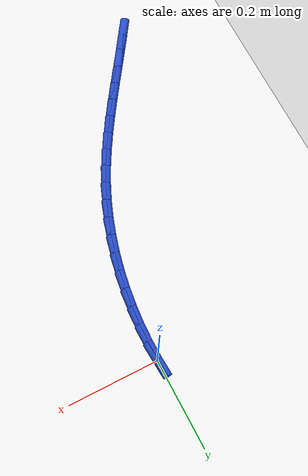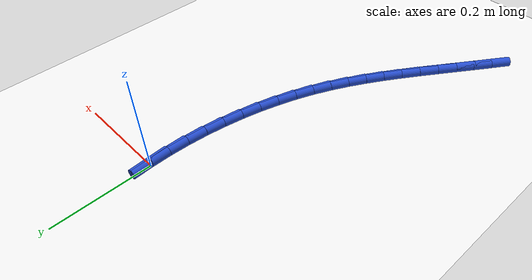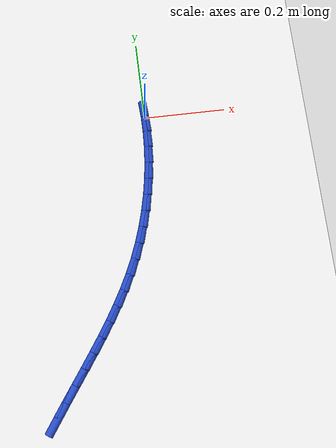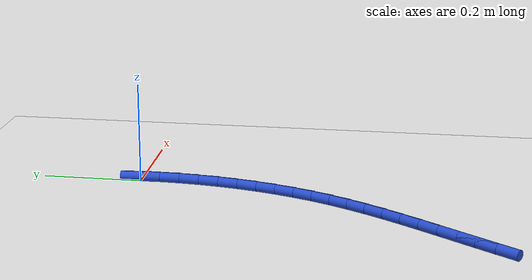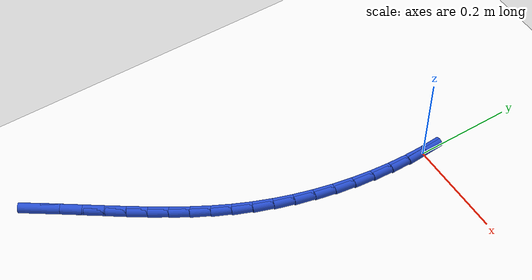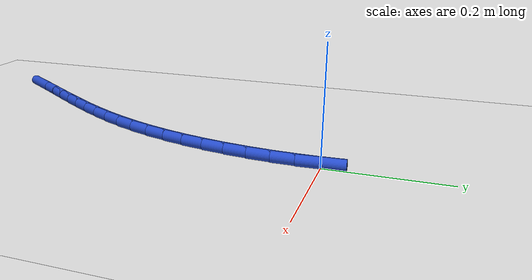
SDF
<sdf version="1.6">
 <world name="default">
  <model name="ground_plane">
   <static>1</static>
   <link name="link">
    <collision name="collision">
     <geometry><plane><normal>0 0 1</normal><size>100 100</size></plane></geometry>
     <surface><friction><ode><mu>100</mu><mu2>50</mu2></ode></friction></surface>
    </collision>
    <visual name="visual">
     <cast_shadows>0</cast_shadows>
     <geometry><plane><normal>0 0 1</normal><size>100 100</size></plane></geometry>
     <material>
      <script><uri>file://media/materials/scripts/gazebo.material</uri><name>Gazebo/WhiteGlow</name></script>
     </material>
    </visual>
   </link>
  </model>
  <model name="line">
   <link name="link_0">
    <pose>-1.3877787807814457e-17 3.469446951953614e-17 0.01 0 1.57 -1.5139552277682178</pose>
    <collision name="collision">
     <geometry><cylinder><radius>0.01</radius><length>0.08</length></cylinder></geometry>
    </collision>
    <visual name="visual">
     <material>
      <script><name>Gazebo/Blue</name><uri>file://media/materials/scripts/gazebo.material</uri></script>
     </material>
     <geometry><cylinder><radius>0.01</radius><length>0.08</length></cylinder></geometry>
    </visual>
   </link>
   <link name="link_151">
    <pose>-0.277459526870188 -0.6977397334532071 0.01 0 1.57 0.9689761049379728</pose>
    <collision name="collision">
     <geometry><cylinder><radius>0.01</radius><length>0.08</length></cylinder></geometry>
    </collision>
    <visual name="visual">
     <material>
      <script><name>Gazebo/Blue</name><uri>file://media/materials/scripts/gazebo.material</uri></script>
     </material>
     <geometry><cylinder><radius>0.01</radius><length>0.08</length></cylinder></geometry>
    </visual>
   </link>
   <link name="link_152">
    <pose>-0.2533929541803728 -0.6626987587450612 0.01 0 1.57 0.9620792668762069</pose>
    <collision name="collision">
     <geometry><cylinder><radius>0.01</radius><length>0.08</length></cylinder></geometry>
    </collision>
    <visual name="visual">
     <material>
      <script><name>Gazebo/Blue</name><uri>file://media/materials/scripts/gazebo.material</uri></script>
     </material>
     <geometry><cylinder><radius>0.01</radius><length>0.08</length></cylinder></geometry>
    </visual>
   </link>
   <link name="link_153">
    <pose>-0.22948814886522997 -0.6284025888719006 0.01 0 1.57 0.9608248843945876</pose>
    <collision name="collision">
     <geometry><cylinder><radius>0.01</radius><length>0.08</length></cylinder></geometry>
    </collision>
    <visual name="visual">
     <material>
      <script><name>Gazebo/Blue</name><uri>file://media/materials/scripts/gazebo.material</uri></script>
     </material>
     <geometry><cylinder><radius>0.01</radius><length>0.08</length></cylinder></geometry>
    </visual>
   </link>
   <link name="link_154">
    <pose>-0.20590877730459775 -0.5946636143375801 0.01 0 1.57 0.9662919894096704</pose>
    <collision name="collision">
     <geometry><cylinder><radius>0.01</radius><length>0.08</length></cylinder></geometry>
    </collision>
    <visual name="visual">
     <material>
      <script><name>Gazebo/Blue</name><uri>file://media/materials/scripts/gazebo.material</uri></script>
     </material>
     <geometry><cylinder><radius>0.01</radius><length>0.08</length></cylinder></geometry>
    </visual>
   </link>
   <link name="link_155">
    <pose>-0.18283463974943295 -0.5612601046441046 0.01 0 1.57 0.9787303565974983</pose>
    <collision name="collision">
     <geometry><cylinder><radius>0.01</radius><length>0.08</length></cylinder></geometry>
    </collision>
    <visual name="visual">
     <material>
      <script><name>Gazebo/Blue</name><uri>file://media/materials/scripts/gazebo.material</uri></script>
     </material>
     <geometry><cylinder><radius>0.01</radius><length>0.08</length></cylinder></geometry>
    </visual>
   </link>
   <link name="link_156">
    <pose>-0.16044553645069237 -0.5279703292934796 0.01 0 1.57 0.9983098466940283</pose>
    <collision name="collision">
     <geometry><cylinder><radius>0.01</radius><length>0.08</length></cylinder></geometry>
    </collision>
    <visual name="visual">
     <material>
      <script><name>Gazebo/Blue</name><uri>file://media/materials/scripts/gazebo.material</uri></script>
     </material>
     <geometry><cylinder><radius>0.01</radius><length>0.08</length></cylinder></geometry>
    </visual>
   </link>
   <link name="link_157">
    <pose>-0.13892126765933324 -0.4945725577877108 0.01 0 1.57 1.0250930841984625</pose>
    <collision name="collision">
     <geometry><cylinder><radius>0.01</radius><length>0.08</length></cylinder></geometry>
    </collision>
    <visual name="visual">
     <material>
      <script><name>Gazebo/Blue</name><uri>file://media/materials/scripts/gazebo.material</uri></script>
     </material>
     <geometry><cylinder><radius>0.01</radius><length>0.08</length></cylinder></geometry>
    </visual>
   </link>
   <link name="link_158">
    <pose>-0.11844163362631216 -0.46084505962880323 0.01 0 1.57 1.0589990485331549</pose>
    <collision name="collision">
     <geometry><cylinder><radius>0.01</radius><length>0.08</length></cylinder></geometry>
    </collision>
    <visual name="visual">
     <material>
      <script><name>Gazebo/Blue</name><uri>file://media/materials/scripts/gazebo.material</uri></script>
     </material>
     <geometry><cylinder><radius>0.01</radius><length>0.08</length></cylinder></geometry>
    </visual>
   </link>
   <link name="link_159">
    <pose>-0.09918643460258694 -0.4265661043187635 0.01 0 1.57 1.099761179821466</pose>
    <collision name="collision">
     <geometry><cylinder><radius>0.01</radius><length>0.08</length></cylinder></geometry>
    </collision>
    <visual name="visual">
     <material>
      <script><name>Gazebo/Blue</name><uri>file://media/materials/scripts/gazebo.material</uri></script>
     </material>
     <geometry><cylinder><radius>0.01</radius><length>0.08</length></cylinder></geometry>
    </visual>
   </link>
   <link name="link_160">
    <pose>-0.08133547083911427 -0.3915139613595968 0.01 0 1.57 1.146882418927479</pose>
    <collision name="collision">
     <geometry><cylinder><radius>0.01</radius><length>0.08</length></cylinder></geometry>
    </collision>
    <visual name="visual">
     <material>
      <script><name>Gazebo/Blue</name><uri>file://media/materials/scripts/gazebo.material</uri></script>
     </material>
     <geometry><cylinder><radius>0.01</radius><length>0.08</length></cylinder></geometry>
    </visual>
   </link>
   <link name="link_161">
    <pose>-0.06506844164661123 -0.35546715917256516 0.01 0 1.57 1.1977871735023737</pose>
    <collision name="collision">
     <geometry><cylinder><radius>0.01</radius><length>0.08</length></cylinder></geometry>
    </collision>
    <visual name="visual">
     <material>
      <script><name>Gazebo/Blue</name><uri>file://media/materials/scripts/gazebo.material</uri></script>
     </material>
     <geometry><cylinder><radius>0.01</radius><length>0.08</length></cylinder></geometry>
    </visual>
   </link>
   <link name="link_162">
    <pose>-0.05052578406832149 -0.318304936828173 0.01 0 1.57 1.2475996233490634</pose>
    <collision name="collision">
     <geometry><cylinder><radius>0.01</radius><length>0.08</length></cylinder></geometry>
    </collision>
    <visual name="visual">
     <material>
      <script><name>Gazebo/Blue</name><uri>file://media/materials/scripts/gazebo.material</uri></script>
     </material>
     <geometry><cylinder><radius>0.01</radius><length>0.08</length></cylinder></geometry>
    </visual>
   </link>
   <link name="link_163">
    <pose>-0.03774931554844958 -0.28015950003605056 0.01 0 1.57 1.29598808845899</pose>
    <collision name="collision">
     <geometry><cylinder><radius>0.01</radius><length>0.08</length></cylinder></geometry>
    </collision>
    <visual name="visual">
     <material>
      <script><name>Gazebo/Blue</name><uri>file://media/materials/scripts/gazebo.material</uri></script>
     </material>
     <geometry><cylinder><radius>0.01</radius><length>0.08</length></cylinder></geometry>
    </visual>
   </link>
   <link name="link_164">
    <pose>-0.02676561549717392 -0.24120214120149966 0.01 0 1.57 1.343365662973364</pose>
    <collision name="collision">
     <geometry><cylinder><radius>0.01</radius><length>0.08</length></cylinder></geometry>
    </collision>
    <visual name="visual">
     <material>
      <script><name>Gazebo/Blue</name><uri>file://media/materials/scripts/gazebo.material</uri></script>
     </material>
     <geometry><cylinder><radius>0.01</radius><length>0.08</length></cylinder></geometry>
    </visual>
   </link>
   <link name="link_165">
    <pose>-0.017601263324672177 -0.20160415272981994 0.01 0 1.57 1.3901346573268065</pose>
    <collision name="collision">
     <geometry><cylinder><radius>0.01</radius><length>0.08</length></cylinder></geometry>
    </collision>
    <visual name="visual">
     <material>
      <script><name>Gazebo/Blue</name><uri>file://media/materials/scripts/gazebo.material</uri></script>
     </material>
     <geometry><cylinder><radius>0.01</radius><length>0.08</length></cylinder></geometry>
    </visual>
   </link>
   <link name="link_166">
    <pose>-0.010282838441122301 -0.16153682702631175 0.01 0 1.57 1.4366904891082246</pose>
    <collision name="collision">
     <geometry><cylinder><radius>0.01</radius><length>0.08</length></cylinder></geometry>
    </collision>
    <visual name="visual">
     <material>
      <script><name>Gazebo/Blue</name><uri>file://media/materials/scripts/gazebo.material</uri></script>
     </material>
     <geometry><cylinder><radius>0.01</radius><length>0.08</length></cylinder></geometry>
    </visual>
   </link>
   <link name="link_167">
    <pose>-0.004836920256702213 -0.12117145649627539 0.01 0 1.57 1.4834261852057977</pose>
    <collision name="collision">
     <geometry><cylinder><radius>0.01</radius><length>0.08</length></cylinder></geometry>
    </collision>
    <visual name="visual">
     <material>
      <script><name>Gazebo/Blue</name><uri>file://media/materials/scripts/gazebo.material</uri></script>
     </material>
     <geometry><cylinder><radius>0.01</radius><length>0.08</length></cylinder></geometry>
    </visual>
   </link>
   <link name="link_168">
    <pose>-0.0012900881815897875 -0.08067933354501035 0.01 0 1.57 1.5307370906410547</pose>
    <collision name="collision">
     <geometry><cylinder><radius>0.01</radius><length>0.08</length></cylinder></geometry>
    </collision>
    <visual name="visual">
     <material>
      <script><name>Gazebo/Blue</name><uri>file://media/materials/scripts/gazebo.material</uri></script>
     </material>
     <geometry><cylinder><radius>0.01</radius><length>0.08</length></cylinder></geometry>
    </visual>
   </link>
   <link name="link_169">
    <pose>0.000331078374036892 -0.04023175057781862 0.01 0 1.57 -1.5625672317163626</pose>
    <collision name="collision">
     <geometry><cylinder><radius>0.01</radius><length>0.08</length></cylinder></geometry>
    </collision>
    <visual name="visual">
     <material>
      <script><name>Gazebo/Blue</name><uri>file://media/materials/scripts/gazebo.material</uri></script>
     </material>
     <geometry><cylinder><radius>0.01</radius><length>0.08</length></cylinder></geometry>
    </visual>
   </link>
   <link name="link_170">
    <pose>-8.673617379884035e-18 2.7755575615628914e-16 0.01 0 1.57 -1.5128883872374037</pose>
    <collision name="collision">
     <geometry><cylinder><radius>0.01</radius><length>0.08</length></cylinder></geometry>
    </collision>
    <visual name="visual">
     <material>
      <script><name>Gazebo/Blue</name><uri>file://media/materials/scripts/gazebo.material</uri></script>
     </material>
     <geometry><cylinder><radius>0.01</radius><length>0.08</length></cylinder></geometry>
    </visual>
   </link>
  </model>
 </world>
</sdf>
